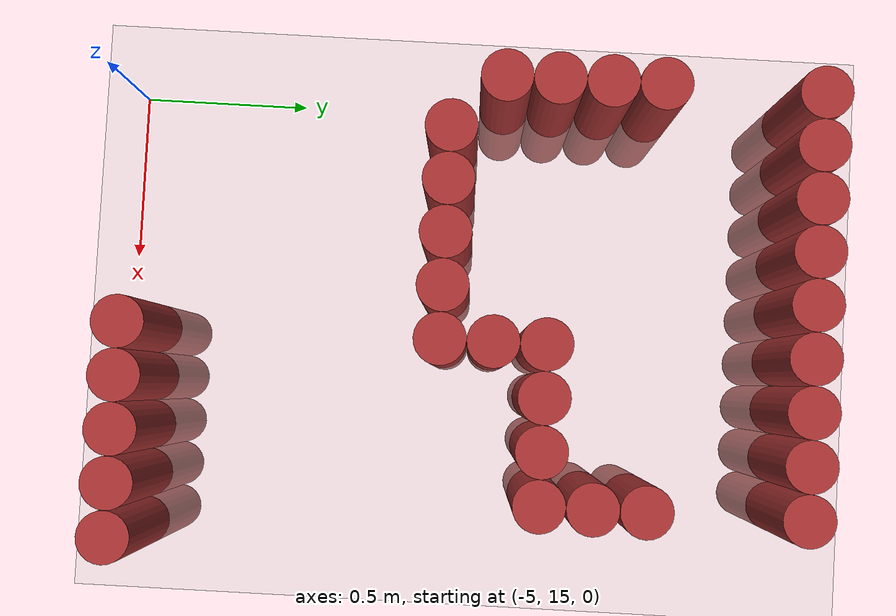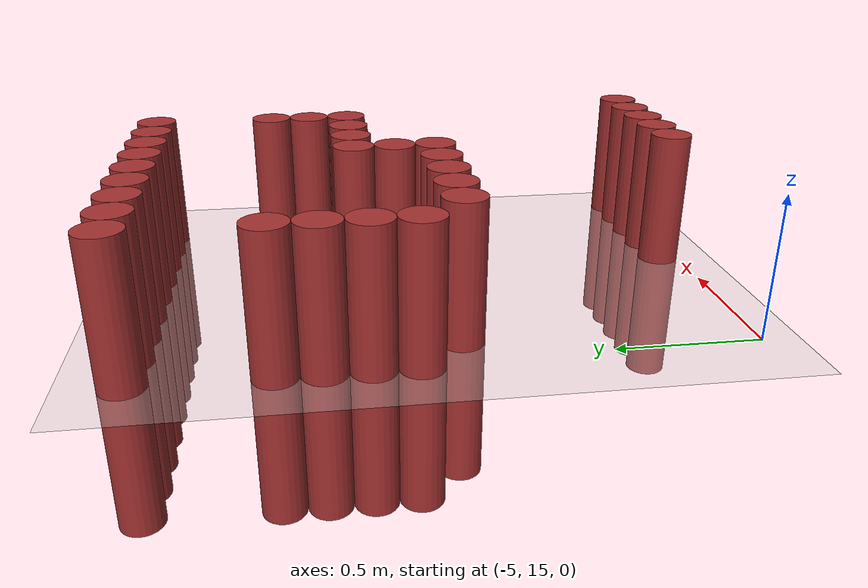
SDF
<sdf version="1.6">
 <world name="default">
  <model name="ground_plane">
   <static>1</static>
   <link name="link">
    <collision name="collision">
     <geometry><plane><normal>0 0 1</normal><size>100 100</size></plane></geometry>
     <surface><friction><ode><mu>100</mu><mu2>50</mu2></ode></friction></surface>
    </collision>
    <visual name="visual">
     <cast_shadows>0</cast_shadows>
     <geometry><plane><normal>0 0 1</normal><size>100 100</size></plane></geometry>
     <material>
      <script><uri>file://media/materials/scripts/gazebo.material</uri><name>Gazebo/Grey</name></script>
     </material>
    </visual>
   </link>
  </model>
  <model name="unit_cylinder_1025">
   <static>1</static>
   <pose>-5.025 16.125 0 0 -0 0</pose>
   <link name="link">
    <inertial>
     <mass>1</mass>
     <inertia><ixx>0.145833</ixx><ixy>0</ixy><ixz>0</ixz><iyy>0.145833</iyy><iyz>0</iyz><izz>0.125</izz></inertia>
    </inertial>
    <collision name="collision">
     <geometry><cylinder><radius>0.075</radius><length>1</length></cylinder></geometry>
    </collision>
    <visual name="visual">
     <geometry><cylinder><radius>0.075</radius><length>1</length></cylinder></geometry>
     <material><ambient>0.648 0.192 0.192 1</ambient><diffuse>0.648 0.192 0.192 1</diffuse></material>
     <material>
      <script><name>Gazebo/Grey</name><uri>file://media/materials/scripts/gazebo.material</uri></script>
     </material>
    </visual>
   </link>
  </model>
  <model name="unit_cylinder_1026">
   <static>1</static>
   <pose>-5.025 16.275 0 0 -0 0</pose>
   <link name="link">
    <inertial>
     <mass>1</mass>
     <inertia><ixx>0.145833</ixx><ixy>0</ixy><ixz>0</ixz><iyy>0.145833</iyy><iyz>0</iyz><izz>0.125</izz></inertia>
    </inertial>
    <collision name="collision">
     <geometry><cylinder><radius>0.075</radius><length>1</length></cylinder></geometry>
    </collision>
    <visual name="visual">
     <geometry><cylinder><radius>0.075</radius><length>1</length></cylinder></geometry>
     <material><ambient>0.648 0.192 0.192 1</ambient><diffuse>0.648 0.192 0.192 1</diffuse></material>
     <material>
      <script><name>Gazebo/Grey</name><uri>file://media/materials/scripts/gazebo.material</uri></script>
     </material>
    </visual>
   </link>
  </model>
  <model name="unit_cylinder_1027">
   <static>1</static>
   <pose>-5.025 16.425 0 0 -0 0</pose>
   <link name="link">
    <inertial>
     <mass>1</mass>
     <inertia><ixx>0.145833</ixx><ixy>0</ixy><ixz>0</ixz><iyy>0.145833</iyy><iyz>0</iyz><izz>0.125</izz></inertia>
    </inertial>
    <collision name="collision">
     <geometry><cylinder><radius>0.075</radius><length>1</length></cylinder></geometry>
    </collision>
    <visual name="visual">
     <geometry><cylinder><radius>0.075</radius><length>1</length></cylinder></geometry>
     <material><ambient>0.648 0.192 0.192 1</ambient><diffuse>0.648 0.192 0.192 1</diffuse></material>
     <material>
      <script><name>Gazebo/Grey</name><uri>file://media/materials/scripts/gazebo.material</uri></script>
     </material>
    </visual>
   </link>
  </model>
  <model name="unit_cylinder_1028">
   <static>1</static>
   <pose>-5.025 16.575 0 0 -0 0</pose>
   <link name="link">
    <inertial>
     <mass>1</mass>
     <inertia><ixx>0.145833</ixx><ixy>0</ixy><ixz>0</ixz><iyy>0.145833</iyy><iyz>0</iyz><izz>0.125</izz></inertia>
    </inertial>
    <collision name="collision">
     <geometry><cylinder><radius>0.075</radius><length>1</length></cylinder></geometry>
    </collision>
    <visual name="visual">
     <geometry><cylinder><radius>0.075</radius><length>1</length></cylinder></geometry>
     <material><ambient>0.648 0.192 0.192 1</ambient><diffuse>0.648 0.192 0.192 1</diffuse></material>
     <material>
      <script><name>Gazebo/Grey</name><uri>file://media/materials/scripts/gazebo.material</uri></script>
     </material>
    </visual>
   </link>
  </model>
  <model name="unit_cylinder_1029">
   <static>1</static>
   <pose>-5.025 17.025 0 0 -0 0</pose>
   <link name="link">
    <inertial>
     <mass>1</mass>
     <inertia><ixx>0.145833</ixx><ixy>0</ixy><ixz>0</ixz><iyy>0.145833</iyy><iyz>0</iyz><izz>0.125</izz></inertia>
    </inertial>
    <collision name="collision">
     <geometry><cylinder><radius>0.075</radius><length>1</length></cylinder></geometry>
    </collision>
    <visual name="visual">
     <geometry><cylinder><radius>0.075</radius><length>1</length></cylinder></geometry>
     <material><ambient>0.648 0.192 0.192 1</ambient><diffuse>0.648 0.192 0.192 1</diffuse></material>
     <material>
      <script><name>Gazebo/Grey</name><uri>file://media/materials/scripts/gazebo.material</uri></script>
     </material>
    </visual>
   </link>
  </model>
  <model name="unit_cylinder_1041">
   <static>1</static>
   <pose>-4.875 15.975 0 0 -0 0</pose>
   <link name="link">
    <inertial>
     <mass>1</mass>
     <inertia><ixx>0.145833</ixx><ixy>0</ixy><ixz>0</ixz><iyy>0.145833</iyy><iyz>0</iyz><izz>0.125</izz></inertia>
    </inertial>
    <collision name="collision">
     <geometry><cylinder><radius>0.075</radius><length>1</length></cylinder></geometry>
    </collision>
    <visual name="visual">
     <geometry><cylinder><radius>0.075</radius><length>1</length></cylinder></geometry>
     <material><ambient>0.648 0.192 0.192 1</ambient><diffuse>0.648 0.192 0.192 1</diffuse></material>
     <material>
      <script><name>Gazebo/Grey</name><uri>file://media/materials/scripts/gazebo.material</uri></script>
     </material>
    </visual>
   </link>
  </model>
  <model name="unit_cylinder_1042">
   <static>1</static>
   <pose>-4.875 17.025 0 0 -0 0</pose>
   <link name="link">
    <inertial>
     <mass>1</mass>
     <inertia><ixx>0.145833</ixx><ixy>0</ixy><ixz>0</ixz><iyy>0.145833</iyy><iyz>0</iyz><izz>0.125</izz></inertia>
    </inertial>
    <collision name="collision">
     <geometry><cylinder><radius>0.075</radius><length>1</length></cylinder></geometry>
    </collision>
    <visual name="visual">
     <geometry><cylinder><radius>0.075</radius><length>1</length></cylinder></geometry>
     <material><ambient>0.648 0.192 0.192 1</ambient><diffuse>0.648 0.192 0.192 1</diffuse></material>
     <material>
      <script><name>Gazebo/Grey</name><uri>file://media/materials/scripts/gazebo.material</uri></script>
     </material>
    </visual>
   </link>
  </model>
  <model name="unit_cylinder_1061">
   <static>1</static>
   <pose>-4.725 15.975 0 0 -0 0</pose>
   <link name="link">
    <inertial>
     <mass>1</mass>
     <inertia><ixx>0.145833</ixx><ixy>0</ixy><ixz>0</ixz><iyy>0.145833</iyy><iyz>0</iyz><izz>0.125</izz></inertia>
    </inertial>
    <collision name="collision">
     <geometry><cylinder><radius>0.075</radius><length>1</length></cylinder></geometry>
    </collision>
    <visual name="visual">
     <geometry><cylinder><radius>0.075</radius><length>1</length></cylinder></geometry>
     <material><ambient>0.648 0.192 0.192 1</ambient><diffuse>0.648 0.192 0.192 1</diffuse></material>
     <material>
      <script><name>Gazebo/Grey</name><uri>file://media/materials/scripts/gazebo.material</uri></script>
     </material>
    </visual>
   </link>
  </model>
  <model name="unit_cylinder_1062">
   <static>1</static>
   <pose>-4.725 17.025 0 0 -0 0</pose>
   <link name="link">
    <inertial>
     <mass>1</mass>
     <inertia><ixx>0.145833</ixx><ixy>0</ixy><ixz>0</ixz><iyy>0.145833</iyy><iyz>0</iyz><izz>0.125</izz></inertia>
    </inertial>
    <collision name="collision">
     <geometry><cylinder><radius>0.075</radius><length>1</length></cylinder></geometry>
    </collision>
    <visual name="visual">
     <geometry><cylinder><radius>0.075</radius><length>1</length></cylinder></geometry>
     <material><ambient>0.648 0.192 0.192 1</ambient><diffuse>0.648 0.192 0.192 1</diffuse></material>
     <material>
      <script><name>Gazebo/Grey</name><uri>file://media/materials/scripts/gazebo.material</uri></script>
     </material>
    </visual>
   </link>
  </model>
  <model name="unit_cylinder_1096">
   <static>1</static>
   <pose>-4.575 15.975 0 0 -0 0</pose>
   <link name="link">
    <inertial>
     <mass>1</mass>
     <inertia><ixx>0.145833</ixx><ixy>0</ixy><ixz>0</ixz><iyy>0.145833</iyy><iyz>0</iyz><izz>0.125</izz></inertia>
    </inertial>
    <collision name="collision">
     <geometry><cylinder><radius>0.075</radius><length>1</length></cylinder></geometry>
    </collision>
    <visual name="visual">
     <geometry><cylinder><radius>0.075</radius><length>1</length></cylinder></geometry>
     <material><ambient>0.648 0.192 0.192 1</ambient><diffuse>0.648 0.192 0.192 1</diffuse></material>
     <material>
      <script><name>Gazebo/Grey</name><uri>file://media/materials/scripts/gazebo.material</uri></script>
     </material>
    </visual>
   </link>
  </model>
  <model name="unit_cylinder_1097">
   <static>1</static>
   <pose>-4.575 17.025 0 0 -0 0</pose>
   <link name="link">
    <inertial>
     <mass>1</mass>
     <inertia><ixx>0.145833</ixx><ixy>0</ixy><ixz>0</ixz><iyy>0.145833</iyy><iyz>0</iyz><izz>0.125</izz></inertia>
    </inertial>
    <collision name="collision">
     <geometry><cylinder><radius>0.075</radius><length>1</length></cylinder></geometry>
    </collision>
    <visual name="visual">
     <geometry><cylinder><radius>0.075</radius><length>1</length></cylinder></geometry>
     <material><ambient>0.648 0.192 0.192 1</ambient><diffuse>0.648 0.192 0.192 1</diffuse></material>
     <material>
      <script><name>Gazebo/Grey</name><uri>file://media/materials/scripts/gazebo.material</uri></script>
     </material>
    </visual>
   </link>
  </model>
  <model name="unit_cylinder_1110">
   <static>1</static>
   <pose>-4.425 15.975 0 0 -0 0</pose>
   <link name="link">
    <inertial>
     <mass>1</mass>
     <inertia><ixx>0.145833</ixx><ixy>0</ixy><ixz>0</ixz><iyy>0.145833</iyy><iyz>0</iyz><izz>0.125</izz></inertia>
    </inertial>
    <collision name="collision">
     <geometry><cylinder><radius>0.075</radius><length>1</length></cylinder></geometry>
    </collision>
    <visual name="visual">
     <geometry><cylinder><radius>0.075</radius><length>1</length></cylinder></geometry>
     <material><ambient>0.648 0.192 0.192 1</ambient><diffuse>0.648 0.192 0.192 1</diffuse></material>
     <material>
      <script><name>Gazebo/Grey</name><uri>file://media/materials/scripts/gazebo.material</uri></script>
     </material>
    </visual>
   </link>
  </model>
  <model name="unit_cylinder_1111">
   <static>1</static>
   <pose>-4.425 17.025 0 0 -0 0</pose>
   <link name="link">
    <inertial>
     <mass>1</mass>
     <inertia><ixx>0.145833</ixx><ixy>0</ixy><ixz>0</ixz><iyy>0.145833</iyy><iyz>0</iyz><izz>0.125</izz></inertia>
    </inertial>
    <collision name="collision">
     <geometry><cylinder><radius>0.075</radius><length>1</length></cylinder></geometry>
    </collision>
    <visual name="visual">
     <geometry><cylinder><radius>0.075</radius><length>1</length></cylinder></geometry>
     <material><ambient>0.648 0.192 0.192 1</ambient><diffuse>0.648 0.192 0.192 1</diffuse></material>
     <material>
      <script><name>Gazebo/Grey</name><uri>file://media/materials/scripts/gazebo.material</uri></script>
     </material>
    </visual>
   </link>
  </model>
  <model name="unit_cylinder_1124">
   <static>1</static>
   <pose>-4.275 15.075 0 0 -0 0</pose>
   <link name="link">
    <inertial>
     <mass>1</mass>
     <inertia><ixx>0.145833</ixx><ixy>0</ixy><ixz>0</ixz><iyy>0.145833</iyy><iyz>0</iyz><izz>0.125</izz></inertia>
    </inertial>
    <collision name="collision">
     <geometry><cylinder><radius>0.075</radius><length>1</length></cylinder></geometry>
    </collision>
    <visual name="visual">
     <geometry><cylinder><radius>0.075</radius><length>1</length></cylinder></geometry>
     <material><ambient>0.648 0.192 0.192 1</ambient><diffuse>0.648 0.192 0.192 1</diffuse></material>
     <material>
      <script><name>Gazebo/Grey</name><uri>file://media/materials/scripts/gazebo.material</uri></script>
     </material>
    </visual>
   </link>
  </model>
  <model name="unit_cylinder_1125">
   <static>1</static>
   <pose>-4.275 15.975 0 0 -0 0</pose>
   <link name="link">
    <inertial>
     <mass>1</mass>
     <inertia><ixx>0.145833</ixx><ixy>0</ixy><ixz>0</ixz><iyy>0.145833</iyy><iyz>0</iyz><izz>0.125</izz></inertia>
    </inertial>
    <collision name="collision">
     <geometry><cylinder><radius>0.075</radius><length>1</length></cylinder></geometry>
    </collision>
    <visual name="visual">
     <geometry><cylinder><radius>0.075</radius><length>1</length></cylinder></geometry>
     <material><ambient>0.648 0.192 0.192 1</ambient><diffuse>0.648 0.192 0.192 1</diffuse></material>
     <material>
      <script><name>Gazebo/Grey</name><uri>file://media/materials/scripts/gazebo.material</uri></script>
     </material>
    </visual>
   </link>
  </model>
  <model name="unit_cylinder_1126">
   <static>1</static>
   <pose>-4.275 16.125 0 0 -0 0</pose>
   <link name="link">
    <inertial>
     <mass>1</mass>
     <inertia><ixx>0.145833</ixx><ixy>0</ixy><ixz>0</ixz><iyy>0.145833</iyy><iyz>0</iyz><izz>0.125</izz></inertia>
    </inertial>
    <collision name="collision">
     <geometry><cylinder><radius>0.075</radius><length>1</length></cylinder></geometry>
    </collision>
    <visual name="visual">
     <geometry><cylinder><radius>0.075</radius><length>1</length></cylinder></geometry>
     <material><ambient>0.648 0.192 0.192 1</ambient><diffuse>0.648 0.192 0.192 1</diffuse></material>
     <material>
      <script><name>Gazebo/Grey</name><uri>file://media/materials/scripts/gazebo.material</uri></script>
     </material>
    </visual>
   </link>
  </model>
  <model name="unit_cylinder_1127">
   <static>1</static>
   <pose>-4.275 16.275 0 0 -0 0</pose>
   <link name="link">
    <inertial>
     <mass>1</mass>
     <inertia><ixx>0.145833</ixx><ixy>0</ixy><ixz>0</ixz><iyy>0.145833</iyy><iyz>0</iyz><izz>0.125</izz></inertia>
    </inertial>
    <collision name="collision">
     <geometry><cylinder><radius>0.075</radius><length>1</length></cylinder></geometry>
    </collision>
    <visual name="visual">
     <geometry><cylinder><radius>0.075</radius><length>1</length></cylinder></geometry>
     <material><ambient>0.648 0.192 0.192 1</ambient><diffuse>0.648 0.192 0.192 1</diffuse></material>
     <material>
      <script><name>Gazebo/Grey</name><uri>file://media/materials/scripts/gazebo.material</uri></script>
     </material>
    </visual>
   </link>
  </model>
  <model name="unit_cylinder_1128">
   <static>1</static>
   <pose>-4.275 17.025 0 0 -0 0</pose>
   <link name="link">
    <inertial>
     <mass>1</mass>
     <inertia><ixx>0.145833</ixx><ixy>0</ixy><ixz>0</ixz><iyy>0.145833</iyy><iyz>0</iyz><izz>0.125</izz></inertia>
    </inertial>
    <collision name="collision">
     <geometry><cylinder><radius>0.075</radius><length>1</length></cylinder></geometry>
    </collision>
    <visual name="visual">
     <geometry><cylinder><radius>0.075</radius><length>1</length></cylinder></geometry>
     <material><ambient>0.648 0.192 0.192 1</ambient><diffuse>0.648 0.192 0.192 1</diffuse></material>
     <material>
      <script><name>Gazebo/Grey</name><uri>file://media/materials/scripts/gazebo.material</uri></script>
     </material>
    </visual>
   </link>
  </model>
  <model name="unit_cylinder_1137">
   <static>1</static>
   <pose>-4.125 15.075 0 0 -0 0</pose>
   <link name="link">
    <inertial>
     <mass>1</mass>
     <inertia><ixx>0.145833</ixx><ixy>0</ixy><ixz>0</ixz><iyy>0.145833</iyy><iyz>0</iyz><izz>0.125</izz></inertia>
    </inertial>
    <collision name="collision">
     <geometry><cylinder><radius>0.075</radius><length>1</length></cylinder></geometry>
    </collision>
    <visual name="visual">
     <geometry><cylinder><radius>0.075</radius><length>1</length></cylinder></geometry>
     <material><ambient>0.648 0.192 0.192 1</ambient><diffuse>0.648 0.192 0.192 1</diffuse></material>
     <material>
      <script><name>Gazebo/Grey</name><uri>file://media/materials/scripts/gazebo.material</uri></script>
     </material>
    </visual>
   </link>
  </model>
  <model name="unit_cylinder_1138">
   <static>1</static>
   <pose>-4.125 16.275 0 0 -0 0</pose>
   <link name="link">
    <inertial>
     <mass>1</mass>
     <inertia><ixx>0.145833</ixx><ixy>0</ixy><ixz>0</ixz><iyy>0.145833</iyy><iyz>0</iyz><izz>0.125</izz></inertia>
    </inertial>
    <collision name="collision">
     <geometry><cylinder><radius>0.075</radius><length>1</length></cylinder></geometry>
    </collision>
    <visual name="visual">
     <geometry><cylinder><radius>0.075</radius><length>1</length></cylinder></geometry>
     <material><ambient>0.648 0.192 0.192 1</ambient><diffuse>0.648 0.192 0.192 1</diffuse></material>
     <material>
      <script><name>Gazebo/Grey</name><uri>file://media/materials/scripts/gazebo.material</uri></script>
     </material>
    </visual>
   </link>
  </model>
  <model name="unit_cylinder_1139">
   <static>1</static>
   <pose>-4.125 17.025 0 0 -0 0</pose>
   <link name="link">
    <inertial>
     <mass>1</mass>
     <inertia><ixx>0.145833</ixx><ixy>0</ixy><ixz>0</ixz><iyy>0.145833</iyy><iyz>0</iyz><izz>0.125</izz></inertia>
    </inertial>
    <collision name="collision">
     <geometry><cylinder><radius>0.075</radius><length>1</length></cylinder></geometry>
    </collision>
    <visual name="visual">
     <geometry><cylinder><radius>0.075</radius><length>1</length></cylinder></geometry>
     <material><ambient>0.648 0.192 0.192 1</ambient><diffuse>0.648 0.192 0.192 1</diffuse></material>
     <material>
      <script><name>Gazebo/Grey</name><uri>file://media/materials/scripts/gazebo.material</uri></script>
     </material>
    </visual>
   </link>
  </model>
  <model name="unit_cylinder_1145">
   <static>1</static>
   <pose>-3.975 15.075 0 0 -0 0</pose>
   <link name="link">
    <inertial>
     <mass>1</mass>
     <inertia><ixx>0.145833</ixx><ixy>0</ixy><ixz>0</ixz><iyy>0.145833</iyy><iyz>0</iyz><izz>0.125</izz></inertia>
    </inertial>
    <collision name="collision">
     <geometry><cylinder><radius>0.075</radius><length>1</length></cylinder></geometry>
    </collision>
    <visual name="visual">
     <geometry><cylinder><radius>0.075</radius><length>1</length></cylinder></geometry>
     <material><ambient>0.648 0.192 0.192 1</ambient><diffuse>0.648 0.192 0.192 1</diffuse></material>
     <material>
      <script><name>Gazebo/Grey</name><uri>file://media/materials/scripts/gazebo.material</uri></script>
     </material>
    </visual>
   </link>
  </model>
  <model name="unit_cylinder_1146">
   <static>1</static>
   <pose>-3.975 16.275 0 0 -0 0</pose>
   <link name="link">
    <inertial>
     <mass>1</mass>
     <inertia><ixx>0.145833</ixx><ixy>0</ixy><ixz>0</ixz><iyy>0.145833</iyy><iyz>0</iyz><izz>0.125</izz></inertia>
    </inertial>
    <collision name="collision">
     <geometry><cylinder><radius>0.075</radius><length>1</length></cylinder></geometry>
    </collision>
    <visual name="visual">
     <geometry><cylinder><radius>0.075</radius><length>1</length></cylinder></geometry>
     <material><ambient>0.648 0.192 0.192 1</ambient><diffuse>0.648 0.192 0.192 1</diffuse></material>
     <material>
      <script><name>Gazebo/Grey</name><uri>file://media/materials/scripts/gazebo.material</uri></script>
     </material>
    </visual>
   </link>
  </model>
  <model name="unit_cylinder_1147">
   <static>1</static>
   <pose>-3.975 17.025 0 0 -0 0</pose>
   <link name="link">
    <inertial>
     <mass>1</mass>
     <inertia><ixx>0.145833</ixx><ixy>0</ixy><ixz>0</ixz><iyy>0.145833</iyy><iyz>0</iyz><izz>0.125</izz></inertia>
    </inertial>
    <collision name="collision">
     <geometry><cylinder><radius>0.075</radius><length>1</length></cylinder></geometry>
    </collision>
    <visual name="visual">
     <geometry><cylinder><radius>0.075</radius><length>1</length></cylinder></geometry>
     <material><ambient>0.648 0.192 0.192 1</ambient><diffuse>0.648 0.192 0.192 1</diffuse></material>
     <material>
      <script><name>Gazebo/Grey</name><uri>file://media/materials/scripts/gazebo.material</uri></script>
     </material>
    </visual>
   </link>
  </model>
  <model name="unit_cylinder_1156">
   <static>1</static>
   <pose>-3.825 15.075 0 0 -0 0</pose>
   <link name="link">
    <inertial>
     <mass>1</mass>
     <inertia><ixx>0.145833</ixx><ixy>0</ixy><ixz>0</ixz><iyy>0.145833</iyy><iyz>0</iyz><izz>0.125</izz></inertia>
    </inertial>
    <collision name="collision">
     <geometry><cylinder><radius>0.075</radius><length>1</length></cylinder></geometry>
    </collision>
    <visual name="visual">
     <geometry><cylinder><radius>0.075</radius><length>1</length></cylinder></geometry>
     <material><ambient>0.648 0.192 0.192 1</ambient><diffuse>0.648 0.192 0.192 1</diffuse></material>
     <material>
      <script><name>Gazebo/Grey</name><uri>file://media/materials/scripts/gazebo.material</uri></script>
     </material>
    </visual>
   </link>
  </model>
  <model name="unit_cylinder_1157">
   <static>1</static>
   <pose>-3.825 16.275 0 0 -0 0</pose>
   <link name="link">
    <inertial>
     <mass>1</mass>
     <inertia><ixx>0.145833</ixx><ixy>0</ixy><ixz>0</ixz><iyy>0.145833</iyy><iyz>0</iyz><izz>0.125</izz></inertia>
    </inertial>
    <collision name="collision">
     <geometry><cylinder><radius>0.075</radius><length>1</length></cylinder></geometry>
    </collision>
    <visual name="visual">
     <geometry><cylinder><radius>0.075</radius><length>1</length></cylinder></geometry>
     <material><ambient>0.648 0.192 0.192 1</ambient><diffuse>0.648 0.192 0.192 1</diffuse></material>
     <material>
      <script><name>Gazebo/Grey</name><uri>file://media/materials/scripts/gazebo.material</uri></script>
     </material>
    </visual>
   </link>
  </model>
  <model name="unit_cylinder_1158">
   <static>1</static>
   <pose>-3.825 16.425 0 0 -0 0</pose>
   <link name="link">
    <inertial>
     <mass>1</mass>
     <inertia><ixx>0.145833</ixx><ixy>0</ixy><ixz>0</ixz><iyy>0.145833</iyy><iyz>0</iyz><izz>0.125</izz></inertia>
    </inertial>
    <collision name="collision">
     <geometry><cylinder><radius>0.075</radius><length>1</length></cylinder></geometry>
    </collision>
    <visual name="visual">
     <geometry><cylinder><radius>0.075</radius><length>1</length></cylinder></geometry>
     <material><ambient>0.648 0.192 0.192 1</ambient><diffuse>0.648 0.192 0.192 1</diffuse></material>
     <material>
      <script><name>Gazebo/Grey</name><uri>file://media/materials/scripts/gazebo.material</uri></script>
     </material>
    </visual>
   </link>
  </model>
  <model name="unit_cylinder_1159">
   <static>1</static>
   <pose>-3.825 16.575 0 0 -0 0</pose>
   <link name="link">
    <inertial>
     <mass>1</mass>
     <inertia><ixx>0.145833</ixx><ixy>0</ixy><ixz>0</ixz><iyy>0.145833</iyy><iyz>0</iyz><izz>0.125</izz></inertia>
    </inertial>
    <collision name="collision">
     <geometry><cylinder><radius>0.075</radius><length>1</length></cylinder></geometry>
    </collision>
    <visual name="visual">
     <geometry><cylinder><radius>0.075</radius><length>1</length></cylinder></geometry>
     <material><ambient>0.648 0.192 0.192 1</ambient><diffuse>0.648 0.192 0.192 1</diffuse></material>
     <material>
      <script><name>Gazebo/Grey</name><uri>file://media/materials/scripts/gazebo.material</uri></script>
     </material>
    </visual>
   </link>
  </model>
  <model name="unit_cylinder_1160">
   <static>1</static>
   <pose>-3.825 17.025 0 0 -0 0</pose>
   <link name="link">
    <inertial>
     <mass>1</mass>
     <inertia><ixx>0.145833</ixx><ixy>0</ixy><ixz>0</ixz><iyy>0.145833</iyy><iyz>0</iyz><izz>0.125</izz></inertia>
    </inertial>
    <collision name="collision">
     <geometry><cylinder><radius>0.075</radius><length>1</length></cylinder></geometry>
    </collision>
    <visual name="visual">
     <geometry><cylinder><radius>0.075</radius><length>1</length></cylinder></geometry>
     <material><ambient>0.648 0.192 0.192 1</ambient><diffuse>0.648 0.192 0.192 1</diffuse></material>
     <material>
      <script><name>Gazebo/Grey</name><uri>file://media/materials/scripts/gazebo.material</uri></script>
     </material>
    </visual>
   </link>
  </model>
  <model name="unit_cylinder_1179">
   <static>1</static>
   <pose>-3.675 15.075 0 0 -0 0</pose>
   <link name="link">
    <inertial>
     <mass>1</mass>
     <inertia><ixx>0.145833</ixx><ixy>0</ixy><ixz>0</ixz><iyy>0.145833</iyy><iyz>0</iyz><izz>0.125</izz></inertia>
    </inertial>
    <collision name="collision">
     <geometry><cylinder><radius>0.075</radius><length>1</length></cylinder></geometry>
    </collision>
    <visual name="visual">
     <geometry><cylinder><radius>0.075</radius><length>1</length></cylinder></geometry>
     <material><ambient>0.648 0.192 0.192 1</ambient><diffuse>0.648 0.192 0.192 1</diffuse></material>
     <material>
      <script><name>Gazebo/Grey</name><uri>file://media/materials/scripts/gazebo.material</uri></script>
     </material>
    </visual>
   </link>
  </model>
 </world>
</sdf>
